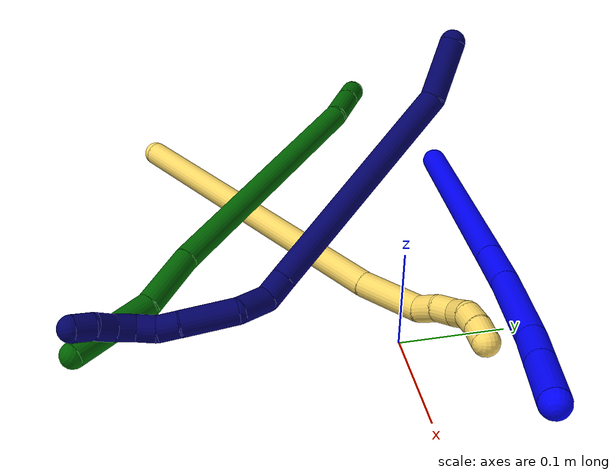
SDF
<sdf version="1.7">
 <world name="default">
  <model name="1">
   <static>0</static>
   <link name="1">
    <collision name="collision-cylinder-e_1_1_4">
     <pose>-0.011755 -0.026583 -0.128134 2.93703 -0.089585 -0.823479</pose>
     <geometry><cylinder><radius>0.0125</radius><length>0.262779</length></cylinder></geometry>
     <surface>
      <friction><ode><mu>1.16</mu><mu2>1.16</mu2><slip1>0</slip1><slip2>0</slip2></ode></friction>
      <contact><ode><kp>1e+06</kp><kd>1</kd><max_vel>0</max_vel><min_depth>0.001</min_depth></ode></contact>
     </surface>
    </collision>
    <visual name="visual-cylinder-e_1_1_4">
     <pose>-0.011755 -0.026583 -0.128134 2.93703 -0.089585 -0.823479</pose>
     <geometry><cylinder><radius>0.0125</radius><length>0.262779</length></cylinder></geometry>
     <material><ambient>0 0 1 1</ambient></material>
    </visual>
    <collision name="collision-cylinder-e_2_4_5">
     <pose>-0.024996 -0.058348 -0.280725 2.93281 -0.059377 -0.552398</pose>
     <geometry><cylinder><radius>0.0125</radius><length>0.050087</length></cylinder></geometry>
     <surface>
      <friction><ode><mu>1.16</mu><mu2>1.16</mu2><slip1>0</slip1><slip2>0</slip2></ode></friction>
      <contact><ode><kp>1e+06</kp><kd>1</kd><max_vel>0</max_vel><min_depth>0.001</min_depth></ode></contact>
     </surface>
    </collision>
    <visual name="visual-cylinder-e_2_4_5">
     <pose>-0.024996 -0.058348 -0.280725 2.93281 -0.059377 -0.552398</pose>
     <geometry><cylinder><radius>0.0125</radius><length>0.050087</length></cylinder></geometry>
     <material><ambient>0 0 1 1</ambient></material>
    </visual>
    <collision name="collision-cylinder-e_3_5_6">
     <pose>-0.031376 -0.071002 -0.352081 2.98359 -0.102697 -1.15158</pose>
     <geometry><cylinder><radius>0.0125</radius><length>0.095485</length></cylinder></geometry>
     <surface>
      <friction><ode><mu>1.16</mu><mu2>1.16</mu2><slip1>0</slip1><slip2>0</slip2></ode></friction>
      <contact><ode><kp>1e+06</kp><kd>1</kd><max_vel>0</max_vel><min_depth>0.001</min_depth></ode></contact>
     </surface>
    </collision>
    <visual name="visual-cylinder-e_3_5_6">
     <pose>-0.031376 -0.071002 -0.352081 2.98359 -0.102697 -1.15158</pose>
     <geometry><cylinder><radius>0.0125</radius><length>0.095485</length></cylinder></geometry>
     <material><ambient>0 0 1 1</ambient></material>
    </visual>
    <collision name="collision-cylinder-e_4_6_7">
     <pose>-0.038957 -0.080267 -0.417593 3.04558 -0.1427 -1.95797</pose>
     <geometry><cylinder><radius>0.0125</radius><length>0.037781</length></cylinder></geometry>
     <surface>
      <friction><ode><mu>1.16</mu><mu2>1.16</mu2><slip1>0</slip1><slip2>0</slip2></ode></friction>
      <contact><ode><kp>1e+06</kp><kd>1</kd><max_vel>0</max_vel><min_depth>0.001</min_depth></ode></contact>
     </surface>
    </collision>
    <visual name="visual-cylinder-e_4_6_7">
     <pose>-0.038957 -0.080267 -0.417593 3.04558 -0.1427 -1.95797</pose>
     <geometry><cylinder><radius>0.0125</radius><length>0.037781</length></cylinder></geometry>
     <material><ambient>0 0 1 1</ambient></material>
    </visual>
    <collision name="collision-cylinder-e_5_7_2">
     <pose>-0.045296 -0.084716 -0.462758 3.0419 -0.136037 -1.87739</pose>
     <geometry><cylinder><radius>0.0125</radius><length>0.053867</length></cylinder></geometry>
     <surface>
      <friction><ode><mu>1.16</mu><mu2>1.16</mu2><slip1>0</slip1><slip2>0</slip2></ode></friction>
      <contact><ode><kp>1e+06</kp><kd>1</kd><max_vel>0</max_vel><min_depth>0.001</min_depth></ode></contact>
     </surface>
    </collision>
    <visual name="visual-cylinder-e_5_7_2">
     <pose>-0.045296 -0.084716 -0.462758 3.0419 -0.136037 -1.87739</pose>
     <geometry><cylinder><radius>0.0125</radius><length>0.053867</length></cylinder></geometry>
     <material><ambient>0 0 1 1</ambient></material>
    </visual>
    <collision name="collision-sphere-2">
     <pose>-0.048949 -0.087372 -0.48931 0 -0 0</pose>
     <geometry><sphere><radius>0.0125</radius></sphere></geometry>
     <surface>
      <friction><ode><mu>1.16</mu><mu2>1.16</mu2><slip1>0</slip1><slip2>0</slip2></ode></friction>
      <contact><ode><kp>1e+06</kp><kd>1</kd><max_vel>0</max_vel><min_depth>0.001</min_depth></ode></contact>
     </surface>
    </collision>
    <visual name="visual-sphere-2">
     <pose>-0.048949 -0.087372 -0.48931 0 -0 0</pose>
     <geometry><sphere><radius>0.0125</radius></sphere></geometry>
     <material><ambient>0 0 1 1</ambient></material>
    </visual>
    <collision name="collision-sphere-7">
     <pose>-0.041644 -0.08206 -0.436205 0 -0 0</pose>
     <geometry><sphere><radius>0.0125</radius></sphere></geometry>
     <surface>
      <friction><ode><mu>1.16</mu><mu2>1.16</mu2><slip1>0</slip1><slip2>0</slip2></ode></friction>
      <contact><ode><kp>1e+06</kp><kd>1</kd><max_vel>0</max_vel><min_depth>0.001</min_depth></ode></contact>
     </surface>
    </collision>
    <visual name="visual-sphere-7">
     <pose>-0.041644 -0.08206 -0.436205 0 -0 0</pose>
     <geometry><sphere><radius>0.0125</radius></sphere></geometry>
     <material><ambient>0 0 1 1</ambient></material>
    </visual>
    <collision name="collision-sphere-6">
     <pose>-0.036271 -0.078475 -0.398981 0 -0 0</pose>
     <geometry><sphere><radius>0.0125</radius></sphere></geometry>
     <surface>
      <friction><ode><mu>1.16</mu><mu2>1.16</mu2><slip1>0</slip1><slip2>0</slip2></ode></friction>
      <contact><ode><kp>1e+06</kp><kd>1</kd><max_vel>0</max_vel><min_depth>0.001</min_depth></ode></contact>
     </surface>
    </collision>
    <visual name="visual-sphere-6">
     <pose>-0.036271 -0.078475 -0.398981 0 -0 0</pose>
     <geometry><sphere><radius>0.0125</radius></sphere></geometry>
     <material><ambient>0 0 1 1</ambient></material>
    </visual>
    <collision name="collision-sphere-5">
     <pose>-0.026482 -0.06353 -0.305182 0 -0 0</pose>
     <geometry><sphere><radius>0.0125</radius></sphere></geometry>
     <surface>
      <friction><ode><mu>1.16</mu><mu2>1.16</mu2><slip1>0</slip1><slip2>0</slip2></ode></friction>
      <contact><ode><kp>1e+06</kp><kd>1</kd><max_vel>0</max_vel><min_depth>0.001</min_depth></ode></contact>
     </surface>
    </collision>
    <visual name="visual-sphere-5">
     <pose>-0.026482 -0.06353 -0.305182 0 -0 0</pose>
     <geometry><sphere><radius>0.0125</radius></sphere></geometry>
     <material><ambient>0 0 1 1</ambient></material>
    </visual>
    <collision name="collision-sphere-1">
     <geometry><sphere><radius>0.0125</radius></sphere></geometry>
     <surface>
      <friction><ode><mu>1.16</mu><mu2>1.16</mu2><slip1>0</slip1><slip2>0</slip2></ode></friction>
      <contact><ode><kp>1e+06</kp><kd>1</kd><max_vel>0</max_vel><min_depth>0.001</min_depth></ode></contact>
     </surface>
    </collision>
    <visual name="visual-sphere-1">
     <geometry><sphere><radius>0.0125</radius></sphere></geometry>
     <material><ambient>0 0 1 1</ambient></material>
    </visual>
    <collision name="collision-sphere-4">
     <pose>-0.02351 -0.053166 -0.256269 0 -0 0</pose>
     <geometry><sphere><radius>0.0125</radius></sphere></geometry>
     <surface>
      <friction><ode><mu>1.16</mu><mu2>1.16</mu2><slip1>0</slip1><slip2>0</slip2></ode></friction>
      <contact><ode><kp>1e+06</kp><kd>1</kd><max_vel>0</max_vel><min_depth>0.001</min_depth></ode></contact>
     </surface>
    </collision>
    <visual name="visual-sphere-4">
     <pose>-0.02351 -0.053166 -0.256269 0 -0 0</pose>
     <geometry><sphere><radius>0.0125</radius></sphere></geometry>
     <material><ambient>0 0 1 1</ambient></material>
    </visual>
    <inertial>
     <pose>-0.022497 -0.048567 -0.24411 0 -0 0</pose>
     <mass>0.5</mass>
     <inertia>
      <ixx>-0.000146</ixx>
      <ixy>0</ixy>
      <ixz>0</ixz>
      <iyy>-0.00224</iyy>
      <iyz>0</iyz>
      <izz>0.000434</izz>
     </inertia>
    </inertial>
   </link>
   <pose>-0.27641 0.11965 0.011551 -1.93757 1.33032 0.907482</pose>
  </model>
  <model name="5">
   <static>0</static>
   <link name="5">
    <collision name="collision-cylinder-e_1_1_4">
     <pose>0.130494 0.086983 -0.050446 -2.09634 0.914274 -1.4135</pose>
     <geometry><cylinder><radius>0.0125</radius><length>0.329481</length></cylinder></geometry>
     <surface>
      <friction><ode><mu>1.16</mu><mu2>1.16</mu2><slip1>0</slip1><slip2>0</slip2></ode></friction>
      <contact><ode><kp>1e+06</kp><kd>1</kd><max_vel>0</max_vel><min_depth>0.001</min_depth></ode></contact>
     </surface>
    </collision>
    <visual name="visual-cylinder-e_1_1_4">
     <pose>0.130494 0.086983 -0.050446 -2.09634 0.914274 -1.4135</pose>
     <geometry><cylinder><radius>0.0125</radius><length>0.329481</length></cylinder></geometry>
     <material><ambient>1 0.858824 0.4 1</ambient></material>
    </visual>
    <collision name="collision-cylinder-e_2_4_5">
     <pose>0.284414 0.194221 -0.111959 -2.07087 0.792756 -1.22897</pose>
     <geometry><cylinder><radius>0.0125</radius><length>0.065774</length></cylinder></geometry>
     <surface>
      <friction><ode><mu>1.16</mu><mu2>1.16</mu2><slip1>0</slip1><slip2>0</slip2></ode></friction>
      <contact><ode><kp>1e+06</kp><kd>1</kd><max_vel>0</max_vel><min_depth>0.001</min_depth></ode></contact>
     </surface>
    </collision>
    <visual name="visual-cylinder-e_2_4_5">
     <pose>0.284414 0.194221 -0.111959 -2.07087 0.792756 -1.22897</pose>
     <geometry><cylinder><radius>0.0125</radius><length>0.065774</length></cylinder></geometry>
     <material><ambient>1 0.858824 0.4 1</ambient></material>
    </visual>
    <collision name="collision-cylinder-e_3_5_6">
     <pose>0.312474 0.225086 -0.125266 -1.77877 0.404028 -0.494734</pose>
     <geometry><cylinder><radius>0.0125</radius><length>0.023583</length></cylinder></geometry>
     <surface>
      <friction><ode><mu>1.16</mu><mu2>1.16</mu2><slip1>0</slip1><slip2>0</slip2></ode></friction>
      <contact><ode><kp>1e+06</kp><kd>1</kd><max_vel>0</max_vel><min_depth>0.001</min_depth></ode></contact>
     </surface>
    </collision>
    <visual name="visual-cylinder-e_3_5_6">
     <pose>0.312474 0.225086 -0.125266 -1.77877 0.404028 -0.494734</pose>
     <geometry><cylinder><radius>0.0125</radius><length>0.023583</length></cylinder></geometry>
     <material><ambient>1 0.858824 0.4 1</ambient></material>
    </visual>
    <collision name="collision-cylinder-e_4_6_7">
     <pose>0.323459 0.243847 -0.129761 -1.84075 0.643914 -0.826324</pose>
     <geometry><cylinder><radius>0.0125</radius><length>0.021153</length></cylinder></geometry>
     <surface>
      <friction><ode><mu>1.16</mu><mu2>1.16</mu2><slip1>0</slip1><slip2>0</slip2></ode></friction>
      <contact><ode><kp>1e+06</kp><kd>1</kd><max_vel>0</max_vel><min_depth>0.001</min_depth></ode></contact>
     </surface>
    </collision>
    <visual name="visual-cylinder-e_4_6_7">
     <pose>0.323459 0.243847 -0.129761 -1.84075 0.643914 -0.826324</pose>
     <geometry><cylinder><radius>0.0125</radius><length>0.021153</length></cylinder></geometry>
     <material><ambient>1 0.858824 0.4 1</ambient></material>
    </visual>
    <collision name="collision-cylinder-e_5_7_8">
     <pose>0.334486 0.260752 -0.130775 -1.42988 0.486645 -0.42453</pose>
     <geometry><cylinder><radius>0.0125</radius><length>0.020003</length></cylinder></geometry>
     <surface>
      <friction><ode><mu>1.16</mu><mu2>1.16</mu2><slip1>0</slip1><slip2>0</slip2></ode></friction>
      <contact><ode><kp>1e+06</kp><kd>1</kd><max_vel>0</max_vel><min_depth>0.001</min_depth></ode></contact>
     </surface>
    </collision>
    <visual name="visual-cylinder-e_5_7_8">
     <pose>0.334486 0.260752 -0.130775 -1.42988 0.486645 -0.42453</pose>
     <geometry><cylinder><radius>0.0125</radius><length>0.020003</length></cylinder></geometry>
     <material><ambient>1 0.858824 0.4 1</ambient></material>
    </visual>
    <collision name="collision-cylinder-e_6_8_9">
     <pose>0.34727 0.275111 -0.127844 -1.2781 0.945254 -0.726143</pose>
     <geometry><cylinder><radius>0.0125</radius><length>0.02</length></cylinder></geometry>
     <surface>
      <friction><ode><mu>1.16</mu><mu2>1.16</mu2><slip1>0</slip1><slip2>0</slip2></ode></friction>
      <contact><ode><kp>1e+06</kp><kd>1</kd><max_vel>0</max_vel><min_depth>0.001</min_depth></ode></contact>
     </surface>
    </collision>
    <visual name="visual-cylinder-e_6_8_9">
     <pose>0.34727 0.275111 -0.127844 -1.2781 0.945254 -0.726143</pose>
     <geometry><cylinder><radius>0.0125</radius><length>0.02</length></cylinder></geometry>
     <material><ambient>1 0.858824 0.4 1</ambient></material>
    </visual>
    <collision name="collision-cylinder-e_7_9_2">
     <pose>0.364037 0.285092 -0.123722 -1.06336 1.04676 -0.654422</pose>
     <geometry><cylinder><radius>0.0125</radius><length>0.020006</length></cylinder></geometry>
     <surface>
      <friction><ode><mu>1.16</mu><mu2>1.16</mu2><slip1>0</slip1><slip2>0</slip2></ode></friction>
      <contact><ode><kp>1e+06</kp><kd>1</kd><max_vel>0</max_vel><min_depth>0.001</min_depth></ode></contact>
     </surface>
    </collision>
    <visual name="visual-cylinder-e_7_9_2">
     <pose>0.364037 0.285092 -0.123722 -1.06336 1.04676 -0.654422</pose>
     <geometry><cylinder><radius>0.0125</radius><length>0.020006</length></cylinder></geometry>
     <material><ambient>1 0.858824 0.4 1</ambient></material>
    </visual>
    <collision name="collision-sphere-2">
     <pose>0.372697 0.289466 -0.12129 0 -0 0</pose>
     <geometry><sphere><radius>0.0125</radius></sphere></geometry>
     <surface>
      <friction><ode><mu>1.16</mu><mu2>1.16</mu2><slip1>0</slip1><slip2>0</slip2></ode></friction>
      <contact><ode><kp>1e+06</kp><kd>1</kd><max_vel>0</max_vel><min_depth>0.001</min_depth></ode></contact>
     </surface>
    </collision>
    <visual name="visual-sphere-2">
     <pose>0.372697 0.289466 -0.12129 0 -0 0</pose>
     <geometry><sphere><radius>0.0125</radius></sphere></geometry>
     <material><ambient>1 0.858824 0.4 1</ambient></material>
    </visual>
    <collision name="collision-sphere-9">
     <pose>0.355376 0.280717 -0.126154 0 -0 0</pose>
     <geometry><sphere><radius>0.0125</radius></sphere></geometry>
     <surface>
      <friction><ode><mu>1.16</mu><mu2>1.16</mu2><slip1>0</slip1><slip2>0</slip2></ode></friction>
      <contact><ode><kp>1e+06</kp><kd>1</kd><max_vel>0</max_vel><min_depth>0.001</min_depth></ode></contact>
     </surface>
    </collision>
    <visual name="visual-sphere-9">
     <pose>0.355376 0.280717 -0.126154 0 -0 0</pose>
     <geometry><sphere><radius>0.0125</radius></sphere></geometry>
     <material><ambient>1 0.858824 0.4 1</ambient></material>
    </visual>
    <collision name="collision-sphere-4">
     <pose>0.260989 0.173965 -0.100891 0 -0 0</pose>
     <geometry><sphere><radius>0.0125</radius></sphere></geometry>
     <surface>
      <friction><ode><mu>1.16</mu><mu2>1.16</mu2><slip1>0</slip1><slip2>0</slip2></ode></friction>
      <contact><ode><kp>1e+06</kp><kd>1</kd><max_vel>0</max_vel><min_depth>0.001</min_depth></ode></contact>
     </surface>
    </collision>
    <visual name="visual-sphere-4">
     <pose>0.260989 0.173965 -0.100891 0 -0 0</pose>
     <geometry><sphere><radius>0.0125</radius></sphere></geometry>
     <material><ambient>1 0.858824 0.4 1</ambient></material>
    </visual>
    <collision name="collision-sphere-1">
     <geometry><sphere><radius>0.0125</radius></sphere></geometry>
     <surface>
      <friction><ode><mu>1.16</mu><mu2>1.16</mu2><slip1>0</slip1><slip2>0</slip2></ode></friction>
      <contact><ode><kp>1e+06</kp><kd>1</kd><max_vel>0</max_vel><min_depth>0.001</min_depth></ode></contact>
     </surface>
    </collision>
    <visual name="visual-sphere-1">
     <geometry><sphere><radius>0.0125</radius></sphere></geometry>
     <material><ambient>1 0.858824 0.4 1</ambient></material>
    </visual>
    <collision name="collision-sphere-8">
     <pose>0.339163 0.269504 -0.129533 0 -0 0</pose>
     <geometry><sphere><radius>0.0125</radius></sphere></geometry>
     <surface>
      <friction><ode><mu>1.16</mu><mu2>1.16</mu2><slip1>0</slip1><slip2>0</slip2></ode></friction>
      <contact><ode><kp>1e+06</kp><kd>1</kd><max_vel>0</max_vel><min_depth>0.001</min_depth></ode></contact>
     </surface>
    </collision>
    <visual name="visual-sphere-8">
     <pose>0.339163 0.269504 -0.129533 0 -0 0</pose>
     <geometry><sphere><radius>0.0125</radius></sphere></geometry>
     <material><ambient>1 0.858824 0.4 1</ambient></material>
    </visual>
    <collision name="collision-sphere-5">
     <pose>0.307839 0.214477 -0.123027 0 -0 0</pose>
     <geometry><sphere><radius>0.0125</radius></sphere></geometry>
     <surface>
      <friction><ode><mu>1.16</mu><mu2>1.16</mu2><slip1>0</slip1><slip2>0</slip2></ode></friction>
      <contact><ode><kp>1e+06</kp><kd>1</kd><max_vel>0</max_vel><min_depth>0.001</min_depth></ode></contact>
     </surface>
    </collision>
    <visual name="visual-sphere-5">
     <pose>0.307839 0.214477 -0.123027 0 -0 0</pose>
     <geometry><sphere><radius>0.0125</radius></sphere></geometry>
     <material><ambient>1 0.858824 0.4 1</ambient></material>
    </visual>
    <collision name="collision-sphere-6">
     <pose>0.31711 0.235695 -0.127505 0 -0 0</pose>
     <geometry><sphere><radius>0.0125</radius></sphere></geometry>
     <surface>
      <friction><ode><mu>1.16</mu><mu2>1.16</mu2><slip1>0</slip1><slip2>0</slip2></ode></friction>
      <contact><ode><kp>1e+06</kp><kd>1</kd><max_vel>0</max_vel><min_depth>0.001</min_depth></ode></contact>
     </surface>
    </collision>
    <visual name="visual-sphere-6">
     <pose>0.31711 0.235695 -0.127505 0 -0 0</pose>
     <geometry><sphere><radius>0.0125</radius></sphere></geometry>
     <material><ambient>1 0.858824 0.4 1</ambient></material>
    </visual>
    <collision name="collision-sphere-7">
     <pose>0.329809 0.251999 -0.132016 0 -0 0</pose>
     <geometry><sphere><radius>0.0125</radius></sphere></geometry>
     <surface>
      <friction><ode><mu>1.16</mu><mu2>1.16</mu2><slip1>0</slip1><slip2>0</slip2></ode></friction>
      <contact><ode><kp>1e+06</kp><kd>1</kd><max_vel>0</max_vel><min_depth>0.001</min_depth></ode></contact>
     </surface>
    </collision>
    <visual name="visual-sphere-7">
     <pose>0.329809 0.251999 -0.132016 0 -0 0</pose>
     <geometry><sphere><radius>0.0125</radius></sphere></geometry>
     <material><ambient>1 0.858824 0.4 1</ambient></material>
    </visual>
    <inertial>
     <pose>0.193665 0.136643 -0.074664 0 -0 0</pose>
     <mass>0.5</mass>
     <inertia>
      <ixx>-0.001499</ixx>
      <ixy>0</ixy>
      <ixz>0</ixz>
      <iyy>2e-06</iyy>
      <iyz>0</iyz>
      <izz>-0.004007</izz>
     </inertia>
    </inertial>
   </link>
   <pose>-0.353053 -0.18961 0.011498 1.30155 0.494919 0.112222</pose>
  </model>
  <model name="6">
   <static>0</static>
   <link name="6">
    <collision name="collision-cylinder-e_1_1_4">
     <pose>0.011143 -0.004249 0.006601 0.571917 0.95704 0.302699</pose>
     <geometry><cylinder><radius>0.0125</radius><length>0.027261</length></cylinder></geometry>
     <surface>
      <friction><ode><mu>1.16</mu><mu2>1.16</mu2><slip1>0</slip1><slip2>0</slip2></ode></friction>
      <contact><ode><kp>1e+06</kp><kd>1</kd><max_vel>0</max_vel><min_depth>0.001</min_depth></ode></contact>
     </surface>
    </collision>
    <visual name="visual-cylinder-e_1_1_4">
     <pose>0.011143 -0.004249 0.006601 0.571917 0.95704 0.302699</pose>
     <geometry><cylinder><radius>0.0125</radius><length>0.027261</length></cylinder></geometry>
     <material><ambient>0 0.392157 0.003922 1</ambient></material>
    </visual>
    <collision name="collision-cylinder-e_2_4_5">
     <pose>0.041116 -0.016774 0.02404 0.652186 0.944038 0.341903</pose>
     <geometry><cylinder><radius>0.0125</radius><length>0.046498</length></cylinder></geometry>
     <surface>
      <friction><ode><mu>1.16</mu><mu2>1.16</mu2><slip1>0</slip1><slip2>0</slip2></ode></friction>
      <contact><ode><kp>1e+06</kp><kd>1</kd><max_vel>0</max_vel><min_depth>0.001</min_depth></ode></contact>
     </surface>
    </collision>
    <visual name="visual-cylinder-e_2_4_5">
     <pose>0.041116 -0.016774 0.02404 0.652186 0.944038 0.341903</pose>
     <geometry><cylinder><radius>0.0125</radius><length>0.046498</length></cylinder></geometry>
     <material><ambient>0 0.392157 0.003922 1</ambient></material>
    </visual>
    <collision name="collision-cylinder-e_3_5_6">
     <pose>0.142317 -0.109681 0.101878 0.901147 0.651834 0.324126</pose>
     <geometry><cylinder><radius>0.0125</radius><length>0.271562</length></cylinder></geometry>
     <surface>
      <friction><ode><mu>1.16</mu><mu2>1.16</mu2><slip1>0</slip1><slip2>0</slip2></ode></friction>
      <contact><ode><kp>1e+06</kp><kd>1</kd><max_vel>0</max_vel><min_depth>0.001</min_depth></ode></contact>
     </surface>
    </collision>
    <visual name="visual-cylinder-e_3_5_6">
     <pose>0.142317 -0.109681 0.101878 0.901147 0.651834 0.324126</pose>
     <geometry><cylinder><radius>0.0125</radius><length>0.271562</length></cylinder></geometry>
     <material><ambient>0 0.392157 0.003922 1</ambient></material>
    </visual>
    <collision name="collision-cylinder-e_4_6_7">
     <pose>0.247546 -0.214002 0.182823 0.954614 0.758394 0.406493</pose>
     <geometry><cylinder><radius>0.0125</radius><length>0.066472</length></cylinder></geometry>
     <surface>
      <friction><ode><mu>1.16</mu><mu2>1.16</mu2><slip1>0</slip1><slip2>0</slip2></ode></friction>
      <contact><ode><kp>1e+06</kp><kd>1</kd><max_vel>0</max_vel><min_depth>0.001</min_depth></ode></contact>
     </surface>
    </collision>
    <visual name="visual-cylinder-e_4_6_7">
     <pose>0.247546 -0.214002 0.182823 0.954614 0.758394 0.406493</pose>
     <geometry><cylinder><radius>0.0125</radius><length>0.066472</length></cylinder></geometry>
     <material><ambient>0 0.392157 0.003922 1</ambient></material>
    </visual>
    <collision name="collision-cylinder-e_5_7_2">
     <pose>0.293257 -0.259498 0.22428 0.753383 0.544679 0.220062</pose>
     <geometry><cylinder><radius>0.0125</radius><length>0.088206</length></cylinder></geometry>
     <surface>
      <friction><ode><mu>1.16</mu><mu2>1.16</mu2><slip1>0</slip1><slip2>0</slip2></ode></friction>
      <contact><ode><kp>1e+06</kp><kd>1</kd><max_vel>0</max_vel><min_depth>0.001</min_depth></ode></contact>
     </surface>
    </collision>
    <visual name="visual-cylinder-e_5_7_2">
     <pose>0.293257 -0.259498 0.22428 0.753383 0.544679 0.220062</pose>
     <geometry><cylinder><radius>0.0125</radius><length>0.088206</length></cylinder></geometry>
     <material><ambient>0 0.392157 0.003922 1</ambient></material>
    </visual>
    <collision name="collision-sphere-2">
     <pose>0.316108 -0.285303 0.251793 0 -0 0</pose>
     <geometry><sphere><radius>0.0125</radius></sphere></geometry>
     <surface>
      <friction><ode><mu>1.16</mu><mu2>1.16</mu2><slip1>0</slip1><slip2>0</slip2></ode></friction>
      <contact><ode><kp>1e+06</kp><kd>1</kd><max_vel>0</max_vel><min_depth>0.001</min_depth></ode></contact>
     </surface>
    </collision>
    <visual name="visual-sphere-2">
     <pose>0.316108 -0.285303 0.251793 0 -0 0</pose>
     <geometry><sphere><radius>0.0125</radius></sphere></geometry>
     <material><ambient>0 0.392157 0.003922 1</ambient></material>
    </visual>
    <collision name="collision-sphere-7">
     <pose>0.270405 -0.233692 0.196767 0 -0 0</pose>
     <geometry><sphere><radius>0.0125</radius></sphere></geometry>
     <surface>
      <friction><ode><mu>1.16</mu><mu2>1.16</mu2><slip1>0</slip1><slip2>0</slip2></ode></friction>
      <contact><ode><kp>1e+06</kp><kd>1</kd><max_vel>0</max_vel><min_depth>0.001</min_depth></ode></contact>
     </surface>
    </collision>
    <visual name="visual-sphere-7">
     <pose>0.270405 -0.233692 0.196767 0 -0 0</pose>
     <geometry><sphere><radius>0.0125</radius></sphere></geometry>
     <material><ambient>0 0.392157 0.003922 1</ambient></material>
    </visual>
    <collision name="collision-sphere-6">
     <pose>0.224688 -0.194312 0.168879 0 -0 0</pose>
     <geometry><sphere><radius>0.0125</radius></sphere></geometry>
     <surface>
      <friction><ode><mu>1.16</mu><mu2>1.16</mu2><slip1>0</slip1><slip2>0</slip2></ode></friction>
      <contact><ode><kp>1e+06</kp><kd>1</kd><max_vel>0</max_vel><min_depth>0.001</min_depth></ode></contact>
     </surface>
    </collision>
    <visual name="visual-sphere-6">
     <pose>0.224688 -0.194312 0.168879 0 -0 0</pose>
     <geometry><sphere><radius>0.0125</radius></sphere></geometry>
     <material><ambient>0 0.392157 0.003922 1</ambient></material>
    </visual>
    <collision name="collision-sphere-5">
     <pose>0.059946 -0.02505 0.034877 0 -0 0</pose>
     <geometry><sphere><radius>0.0125</radius></sphere></geometry>
     <surface>
      <friction><ode><mu>1.16</mu><mu2>1.16</mu2><slip1>0</slip1><slip2>0</slip2></ode></friction>
      <contact><ode><kp>1e+06</kp><kd>1</kd><max_vel>0</max_vel><min_depth>0.001</min_depth></ode></contact>
     </surface>
    </collision>
    <visual name="visual-sphere-5">
     <pose>0.059946 -0.02505 0.034877 0 -0 0</pose>
     <geometry><sphere><radius>0.0125</radius></sphere></geometry>
     <material><ambient>0 0.392157 0.003922 1</ambient></material>
    </visual>
    <collision name="collision-sphere-1">
     <geometry><sphere><radius>0.0125</radius></sphere></geometry>
     <surface>
      <friction><ode><mu>1.16</mu><mu2>1.16</mu2><slip1>0</slip1><slip2>0</slip2></ode></friction>
      <contact><ode><kp>1e+06</kp><kd>1</kd><max_vel>0</max_vel><min_depth>0.001</min_depth></ode></contact>
     </surface>
    </collision>
    <visual name="visual-sphere-1">
     <geometry><sphere><radius>0.0125</radius></sphere></geometry>
     <material><ambient>0 0.392157 0.003922 1</ambient></material>
    </visual>
    <collision name="collision-sphere-4">
     <pose>0.022286 -0.008498 0.013202 0 -0 0</pose>
     <geometry><sphere><radius>0.0125</radius></sphere></geometry>
     <surface>
      <friction><ode><mu>1.16</mu><mu2>1.16</mu2><slip1>0</slip1><slip2>0</slip2></ode></friction>
      <contact><ode><kp>1e+06</kp><kd>1</kd><max_vel>0</max_vel><min_depth>0.001</min_depth></ode></contact>
     </surface>
    </collision>
    <visual name="visual-sphere-4">
     <pose>0.022286 -0.008498 0.013202 0 -0 0</pose>
     <geometry><sphere><radius>0.0125</radius></sphere></geometry>
     <material><ambient>0 0.392157 0.003922 1</ambient></material>
    </visual>
    <inertial>
     <pose>0.166371 -0.135591 0.121799 0 -0 0</pose>
     <mass>0.5</mass>
     <inertia>
      <ixx>0.001813</ixx>
      <ixy>0</ixy>
      <ixz>0</ixz>
      <iyy>0.001747</iyy>
      <iyz>0</iyz>
      <izz>4.3e-05</izz>
     </inertia>
    </inertial>
   </link>
   <pose>-0.386886 0.049475 0.048944 0.852899 -0.037709 0.115769</pose>
  </model>
  <model name="7">
   <static>0</static>
   <link name="7">
    <collision name="collision-cylinder-e_1_1_4">
     <pose>0.012391 -0.008615 -0.02597 2.82128 0.425234 1.85677</pose>
     <geometry><cylinder><radius>0.0125</radius><length>0.060073</length></cylinder></geometry>
     <surface>
      <friction><ode><mu>1.16</mu><mu2>1.16</mu2><slip1>0</slip1><slip2>0</slip2></ode></friction>
      <contact><ode><kp>1e+06</kp><kd>1</kd><max_vel>0</max_vel><min_depth>0.001</min_depth></ode></contact>
     </surface>
    </collision>
    <visual name="visual-cylinder-e_1_1_4">
     <pose>0.012391 -0.008615 -0.02597 2.82128 0.425234 1.85677</pose>
     <geometry><cylinder><radius>0.0125</radius><length>0.060073</length></cylinder></geometry>
     <material><ambient>0.003922 0 0.403922 1</ambient></material>
    </visual>
    <collision name="collision-cylinder-e_2_4_5">
     <pose>0.103963 -0.053258 -0.125908 2.68835 0.766232 2.10225</pose>
     <geometry><cylinder><radius>0.0125</radius><length>0.228376</length></cylinder></geometry>
     <surface>
      <friction><ode><mu>1.16</mu><mu2>1.16</mu2><slip1>0</slip1><slip2>0</slip2></ode></friction>
      <contact><ode><kp>1e+06</kp><kd>1</kd><max_vel>0</max_vel><min_depth>0.001</min_depth></ode></contact>
     </surface>
    </collision>
    <visual name="visual-cylinder-e_2_4_5">
     <pose>0.103963 -0.053258 -0.125908 2.68835 0.766232 2.10225</pose>
     <geometry><cylinder><radius>0.0125</radius><length>0.228376</length></cylinder></geometry>
     <material><ambient>0.003922 0 0.403922 1</ambient></material>
    </visual>
    <collision name="collision-cylinder-e_3_5_6">
     <pose>0.19234 -0.091637 -0.207952 2.85814 0.829949 2.51519</pose>
     <geometry><cylinder><radius>0.0125</radius><length>0.024925</length></cylinder></geometry>
     <surface>
      <friction><ode><mu>1.16</mu><mu2>1.16</mu2><slip1>0</slip1><slip2>0</slip2></ode></friction>
      <contact><ode><kp>1e+06</kp><kd>1</kd><max_vel>0</max_vel><min_depth>0.001</min_depth></ode></contact>
     </surface>
    </collision>
    <visual name="visual-cylinder-e_3_5_6">
     <pose>0.19234 -0.091637 -0.207952 2.85814 0.829949 2.51519</pose>
     <geometry><cylinder><radius>0.0125</radius><length>0.024925</length></cylinder></geometry>
     <material><ambient>0.003922 0 0.403922 1</ambient></material>
    </visual>
    <collision name="collision-cylinder-e_4_6_7">
     <pose>0.217522 -0.093709 -0.219901 -3.0693 1.33249 -3.04966</pose>
     <geometry><cylinder><radius>0.0125</radius><length>0.032901</length></cylinder></geometry>
     <surface>
      <friction><ode><mu>1.16</mu><mu2>1.16</mu2><slip1>0</slip1><slip2>0</slip2></ode></friction>
      <contact><ode><kp>1e+06</kp><kd>1</kd><max_vel>0</max_vel><min_depth>0.001</min_depth></ode></contact>
     </surface>
    </collision>
    <visual name="visual-cylinder-e_4_6_7">
     <pose>0.217522 -0.093709 -0.219901 -3.0693 1.33249 -3.04966</pose>
     <geometry><cylinder><radius>0.0125</radius><length>0.032901</length></cylinder></geometry>
     <material><ambient>0.003922 0 0.403922 1</ambient></material>
    </visual>
    <collision name="collision-cylinder-e_5_7_8">
     <pose>0.25708 -0.10529 -0.225107 1.68276 1.10209 1.20459</pose>
     <geometry><cylinder><radius>0.0125</radius><length>0.052844</length></cylinder></geometry>
     <surface>
      <friction><ode><mu>1.16</mu><mu2>1.16</mu2><slip1>0</slip1><slip2>0</slip2></ode></friction>
      <contact><ode><kp>1e+06</kp><kd>1</kd><max_vel>0</max_vel><min_depth>0.001</min_depth></ode></contact>
     </surface>
    </collision>
    <visual name="visual-cylinder-e_5_7_8">
     <pose>0.25708 -0.10529 -0.225107 1.68276 1.10209 1.20459</pose>
     <geometry><cylinder><radius>0.0125</radius><length>0.052844</length></cylinder></geometry>
     <material><ambient>0.003922 0 0.403922 1</ambient></material>
    </visual>
    <collision name="collision-cylinder-e_6_8_9">
     <pose>0.289219 -0.122912 -0.226828 1.63783 0.977724 1.03438</pose>
     <geometry><cylinder><radius>0.0125</radius><length>0.020662</length></cylinder></geometry>
     <surface>
      <friction><ode><mu>1.16</mu><mu2>1.16</mu2><slip1>0</slip1><slip2>0</slip2></ode></friction>
      <contact><ode><kp>1e+06</kp><kd>1</kd><max_vel>0</max_vel><min_depth>0.001</min_depth></ode></contact>
     </surface>
    </collision>
    <visual name="visual-cylinder-e_6_8_9">
     <pose>0.289219 -0.122912 -0.226828 1.63783 0.977724 1.03438</pose>
     <geometry><cylinder><radius>0.0125</radius><length>0.020662</length></cylinder></geometry>
     <material><ambient>0.003922 0 0.403922 1</ambient></material>
    </visual>
    <collision name="collision-cylinder-e_7_9_10">
     <pose>0.306207 -0.133677 -0.224856 1.13035 0.989526 0.659338</pose>
     <geometry><cylinder><radius>0.0125</radius><length>0.020151</length></cylinder></geometry>
     <surface>
      <friction><ode><mu>1.16</mu><mu2>1.16</mu2><slip1>0</slip1><slip2>0</slip2></ode></friction>
      <contact><ode><kp>1e+06</kp><kd>1</kd><max_vel>0</max_vel><min_depth>0.001</min_depth></ode></contact>
     </surface>
    </collision>
    <visual name="visual-cylinder-e_7_9_10">
     <pose>0.306207 -0.133677 -0.224856 1.13035 0.989526 0.659338</pose>
     <geometry><cylinder><radius>0.0125</radius><length>0.020151</length></cylinder></geometry>
     <material><ambient>0.003922 0 0.403922 1</ambient></material>
    </visual>
    <collision name="collision-cylinder-e_8_10_11">
     <pose>0.32457 -0.139038 -0.221218 0.271521 1.43802 0.238008</pose>
     <geometry><cylinder><radius>0.0125</radius><length>0.020061</length></cylinder></geometry>
     <surface>
      <friction><ode><mu>1.16</mu><mu2>1.16</mu2><slip1>0</slip1><slip2>0</slip2></ode></friction>
      <contact><ode><kp>1e+06</kp><kd>1</kd><max_vel>0</max_vel><min_depth>0.001</min_depth></ode></contact>
     </surface>
    </collision>
    <visual name="visual-cylinder-e_8_10_11">
     <pose>0.32457 -0.139038 -0.221218 0.271521 1.43802 0.238008</pose>
     <geometry><cylinder><radius>0.0125</radius><length>0.020061</length></cylinder></geometry>
     <material><ambient>0.003922 0 0.403922 1</ambient></material>
    </visual>
    <collision name="collision-cylinder-e_9_11_12">
     <pose>0.344173 -0.137403 -0.218277 -0.875533 1.30859 -0.689339</pose>
     <geometry><cylinder><radius>0.0125</radius><length>0.020006</length></cylinder></geometry>
     <surface>
      <friction><ode><mu>1.16</mu><mu2>1.16</mu2><slip1>0</slip1><slip2>0</slip2></ode></friction>
      <contact><ode><kp>1e+06</kp><kd>1</kd><max_vel>0</max_vel><min_depth>0.001</min_depth></ode></contact>
     </surface>
    </collision>
    <visual name="visual-cylinder-e_9_11_12">
     <pose>0.344173 -0.137403 -0.218277 -0.875533 1.30859 -0.689339</pose>
     <geometry><cylinder><radius>0.0125</radius><length>0.020006</length></cylinder></geometry>
     <material><ambient>0.003922 0 0.403922 1</ambient></material>
    </visual>
    <collision name="collision-cylinder-e_10_12_2">
     <pose>0.363831 -0.135469 -0.216346 0.207802 1.54318 0.202181</pose>
     <geometry><cylinder><radius>0.0125</radius><length>0.02</length></cylinder></geometry>
     <surface>
      <friction><ode><mu>1.16</mu><mu2>1.16</mu2><slip1>0</slip1><slip2>0</slip2></ode></friction>
      <contact><ode><kp>1e+06</kp><kd>1</kd><max_vel>0</max_vel><min_depth>0.001</min_depth></ode></contact>
     </surface>
    </collision>
    <visual name="visual-cylinder-e_10_12_2">
     <pose>0.363831 -0.135469 -0.216346 0.207802 1.54318 0.202181</pose>
     <geometry><cylinder><radius>0.0125</radius><length>0.02</length></cylinder></geometry>
     <material><ambient>0.003922 0 0.403922 1</ambient></material>
    </visual>
    <collision name="collision-sphere-2">
     <pose>0.373827 -0.135526 -0.216076 0 -0 0</pose>
     <geometry><sphere><radius>0.0125</radius></sphere></geometry>
     <surface>
      <friction><ode><mu>1.16</mu><mu2>1.16</mu2><slip1>0</slip1><slip2>0</slip2></ode></friction>
      <contact><ode><kp>1e+06</kp><kd>1</kd><max_vel>0</max_vel><min_depth>0.001</min_depth></ode></contact>
     </surface>
    </collision>
    <visual name="visual-sphere-2">
     <pose>0.373827 -0.135526 -0.216076 0 -0 0</pose>
     <geometry><sphere><radius>0.0125</radius></sphere></geometry>
     <material><ambient>0.003922 0 0.403922 1</ambient></material>
    </visual>
    <collision name="collision-sphere-12">
     <pose>0.353835 -0.135412 -0.216616 0 -0 0</pose>
     <geometry><sphere><radius>0.0125</radius></sphere></geometry>
     <surface>
      <friction><ode><mu>1.16</mu><mu2>1.16</mu2><slip1>0</slip1><slip2>0</slip2></ode></friction>
      <contact><ode><kp>1e+06</kp><kd>1</kd><max_vel>0</max_vel><min_depth>0.001</min_depth></ode></contact>
     </surface>
    </collision>
    <visual name="visual-sphere-12">
     <pose>0.353835 -0.135412 -0.216616 0 -0 0</pose>
     <geometry><sphere><radius>0.0125</radius></sphere></geometry>
     <material><ambient>0.003922 0 0.403922 1</ambient></material>
    </visual>
    <collision name="collision-sphere-11">
     <pose>0.334512 -0.139394 -0.219938 0 -0 0</pose>
     <geometry><sphere><radius>0.0125</radius></sphere></geometry>
     <surface>
      <friction><ode><mu>1.16</mu><mu2>1.16</mu2><slip1>0</slip1><slip2>0</slip2></ode></friction>
      <contact><ode><kp>1e+06</kp><kd>1</kd><max_vel>0</max_vel><min_depth>0.001</min_depth></ode></contact>
     </surface>
    </collision>
    <visual name="visual-sphere-11">
     <pose>0.334512 -0.139394 -0.219938 0 -0 0</pose>
     <geometry><sphere><radius>0.0125</radius></sphere></geometry>
     <material><ambient>0.003922 0 0.403922 1</ambient></material>
    </visual>
    <collision name="collision-sphere-10">
     <pose>0.314627 -0.138682 -0.222497 0 -0 0</pose>
     <geometry><sphere><radius>0.0125</radius></sphere></geometry>
     <surface>
      <friction><ode><mu>1.16</mu><mu2>1.16</mu2><slip1>0</slip1><slip2>0</slip2></ode></friction>
      <contact><ode><kp>1e+06</kp><kd>1</kd><max_vel>0</max_vel><min_depth>0.001</min_depth></ode></contact>
     </surface>
    </collision>
    <visual name="visual-sphere-10">
     <pose>0.314627 -0.138682 -0.222497 0 -0 0</pose>
     <geometry><sphere><radius>0.0125</radius></sphere></geometry>
     <material><ambient>0.003922 0 0.403922 1</ambient></material>
    </visual>
    <collision name="collision-sphere-9">
     <pose>0.297786 -0.128673 -0.227214 0 -0 0</pose>
     <geometry><sphere><radius>0.0125</radius></sphere></geometry>
     <surface>
      <friction><ode><mu>1.16</mu><mu2>1.16</mu2><slip1>0</slip1><slip2>0</slip2></ode></friction>
      <contact><ode><kp>1e+06</kp><kd>1</kd><max_vel>0</max_vel><min_depth>0.001</min_depth></ode></contact>
     </surface>
    </collision>
    <visual name="visual-sphere-9">
     <pose>0.297786 -0.128673 -0.227214 0 -0 0</pose>
     <geometry><sphere><radius>0.0125</radius></sphere></geometry>
     <material><ambient>0.003922 0 0.403922 1</ambient></material>
    </visual>
    <collision name="collision-sphere-4">
     <pose>0.024782 -0.01723 -0.051939 0 -0 0</pose>
     <geometry><sphere><radius>0.0125</radius></sphere></geometry>
     <surface>
      <friction><ode><mu>1.16</mu><mu2>1.16</mu2><slip1>0</slip1><slip2>0</slip2></ode></friction>
      <contact><ode><kp>1e+06</kp><kd>1</kd><max_vel>0</max_vel><min_depth>0.001</min_depth></ode></contact>
     </surface>
    </collision>
    <visual name="visual-sphere-4">
     <pose>0.024782 -0.01723 -0.051939 0 -0 0</pose>
     <geometry><sphere><radius>0.0125</radius></sphere></geometry>
     <material><ambient>0.003922 0 0.403922 1</ambient></material>
    </visual>
    <collision name="collision-sphere-1">
     <geometry><sphere><radius>0.0125</radius></sphere></geometry>
     <surface>
      <friction><ode><mu>1.16</mu><mu2>1.16</mu2><slip1>0</slip1><slip2>0</slip2></ode></friction>
      <contact><ode><kp>1e+06</kp><kd>1</kd><max_vel>0</max_vel><min_depth>0.001</min_depth></ode></contact>
     </surface>
    </collision>
    <visual name="visual-sphere-1">
     <geometry><sphere><radius>0.0125</radius></sphere></geometry>
     <material><ambient>0.003922 0 0.403922 1</ambient></material>
    </visual>
    <collision name="collision-sphere-8">
     <pose>0.280652 -0.117151 -0.226441 0 -0 0</pose>
     <geometry><sphere><radius>0.0125</radius></sphere></geometry>
     <surface>
      <friction><ode><mu>1.16</mu><mu2>1.16</mu2><slip1>0</slip1><slip2>0</slip2></ode></friction>
      <contact><ode><kp>1e+06</kp><kd>1</kd><max_vel>0</max_vel><min_depth>0.001</min_depth></ode></contact>
     </surface>
    </collision>
    <visual name="visual-sphere-8">
     <pose>0.280652 -0.117151 -0.226441 0 -0 0</pose>
     <geometry><sphere><radius>0.0125</radius></sphere></geometry>
     <material><ambient>0.003922 0 0.403922 1</ambient></material>
    </visual>
    <collision name="collision-sphere-5">
     <pose>0.183144 -0.089285 -0.199876 0 -0 0</pose>
     <geometry><sphere><radius>0.0125</radius></sphere></geometry>
     <surface>
      <friction><ode><mu>1.16</mu><mu2>1.16</mu2><slip1>0</slip1><slip2>0</slip2></ode></friction>
      <contact><ode><kp>1e+06</kp><kd>1</kd><max_vel>0</max_vel><min_depth>0.001</min_depth></ode></contact>
     </surface>
    </collision>
    <visual name="visual-sphere-5">
     <pose>0.183144 -0.089285 -0.199876 0 -0 0</pose>
     <geometry><sphere><radius>0.0125</radius></sphere></geometry>
     <material><ambient>0.003922 0 0.403922 1</ambient></material>
    </visual>
    <collision name="collision-sphere-6">
     <pose>0.201536 -0.09399 -0.216028 0 -0 0</pose>
     <geometry><sphere><radius>0.0125</radius></sphere></geometry>
     <surface>
      <friction><ode><mu>1.16</mu><mu2>1.16</mu2><slip1>0</slip1><slip2>0</slip2></ode></friction>
      <contact><ode><kp>1e+06</kp><kd>1</kd><max_vel>0</max_vel><min_depth>0.001</min_depth></ode></contact>
     </surface>
    </collision>
    <visual name="visual-sphere-6">
     <pose>0.201536 -0.09399 -0.216028 0 -0 0</pose>
     <geometry><sphere><radius>0.0125</radius></sphere></geometry>
     <material><ambient>0.003922 0 0.403922 1</ambient></material>
    </visual>
    <collision name="collision-sphere-7">
     <pose>0.233507 -0.093429 -0.223774 0 -0 0</pose>
     <geometry><sphere><radius>0.0125</radius></sphere></geometry>
     <surface>
      <friction><ode><mu>1.16</mu><mu2>1.16</mu2><slip1>0</slip1><slip2>0</slip2></ode></friction>
      <contact><ode><kp>1e+06</kp><kd>1</kd><max_vel>0</max_vel><min_depth>0.001</min_depth></ode></contact>
     </surface>
    </collision>
    <visual name="visual-sphere-7">
     <pose>0.233507 -0.093429 -0.223774 0 -0 0</pose>
     <geometry><sphere><radius>0.0125</radius></sphere></geometry>
     <material><ambient>0.003922 0 0.403922 1</ambient></material>
    </visual>
    <inertial>
     <pose>0.165686 -0.074185 -0.153956 0 -0 0</pose>
     <mass>0.5</mass>
     <inertia>
      <ixx>0.000308</ixx>
      <ixy>0</ixy>
      <ixz>0</ixz>
      <iyy>0.001388</iyy>
      <iyz>0</iyz>
      <izz>-0.000415</izz>
     </inertia>
    </inertial>
   </link>
   <pose>-0.205304 0.101268 0.192648 0.750459 -0.257892 -1.24444</pose>
  </model>
 </world>
</sdf>
